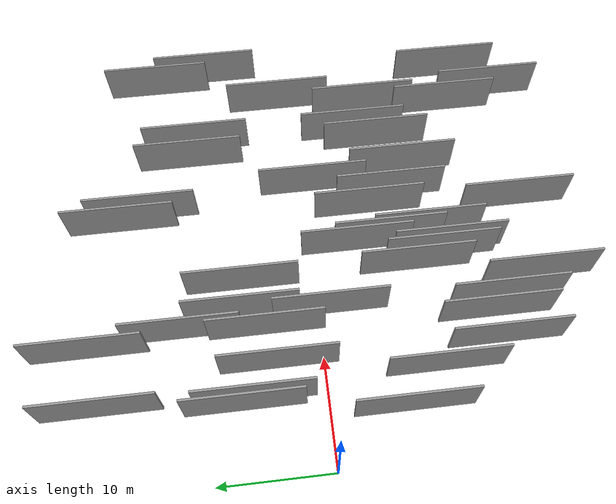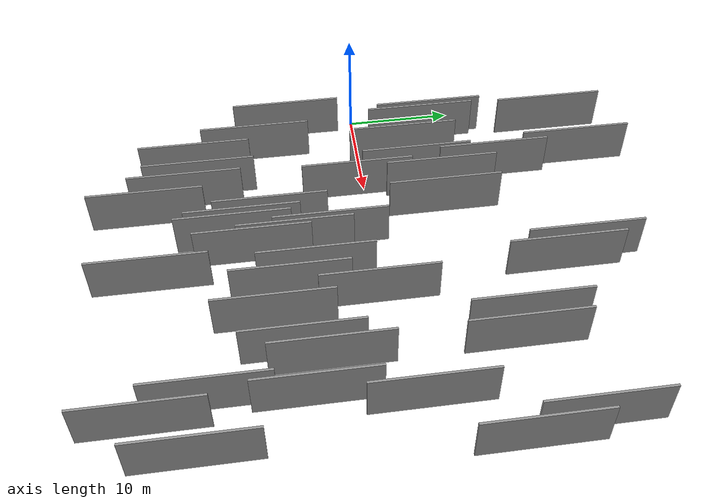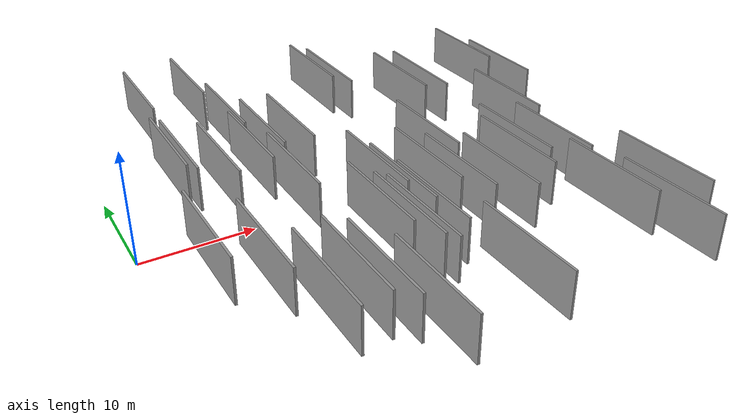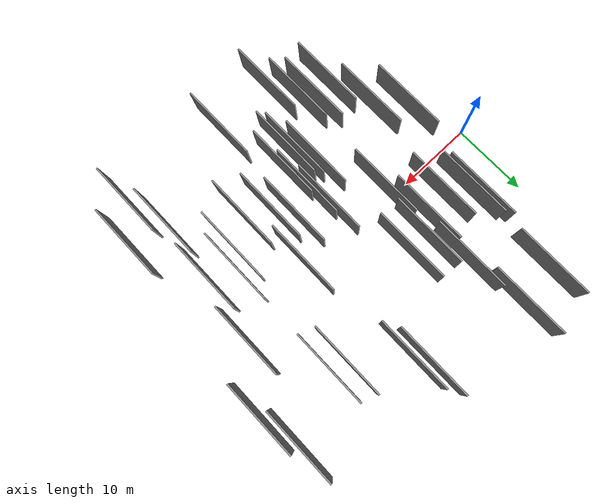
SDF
<sdf version="1.6">
 <world name="default">
  <scene>
   <sky><clouds><speed>12</speed></clouds></sky>
   <ambient>0.4 0.4 0.4 1</ambient>
   <background>0.7 0.7 0.7 1</background>
   <shadows>1</shadows>
  </scene>
  <gravity>0 0 -9.8066</gravity>
  <magnetic_field>6e-06 2.3e-05 -4.2e-05</magnetic_field>
  <physics default="0" name="default_physics" type="ode">
   <ode>
    <solver>
     <type>quick</type>
     <iters>10</iters>
     <sor>1.0</sor>
     <use_dynamic_moi_rescaling>0</use_dynamic_moi_rescaling>
    </solver>
    <constraints>
     <cfm>0</cfm>
     <erp>0.2</erp>
     <contact_max_correcting_vel>100</contact_max_correcting_vel>
     <contact_surface_layer>0.001</contact_surface_layer>
    </constraints>
   </ode>
   <max_step_size>0.004</max_step_size>
   <real_time_factor>1</real_time_factor>
   <real_time_update_rate>250</real_time_update_rate>
  </physics>
  <light name="sun" type="directional">
   <pose>0 0 10 0 0 0</pose>
   <diffuse>0.8 0.8 0.8 1</diffuse>
   <specular>0.2 0.2 0.2 1</specular>
   <attenuation>
    <range>1000</range>
    <constant>0.9</constant>
    <linear>0.01</linear>
    <quadratic>0.001</quadratic>
   </attenuation>
   <direction>-0.5 0.1 -0.9</direction>
  </light>
  <model name="grey_wall_1">
   <static>1</static>
   <pose>23.1692 -5.7111 2.5 0.000000 0.000000 1.570796</pose>
   <link name="link">
    <pose>0 0 2.00 0 0 0</pose>
    <collision name="collision"><geometry><box><size>10.00 0.2 4.00</size></box></geometry></collision>
    <visual name="visual">
     <cast_shadows>0</cast_shadows>
     <geometry><box><size>10.00 0.2 4.00</size></box></geometry>
     <material>
      <script>
       <uri>model://grey_wall/materials/scripts</uri>
       <uri>model://grey_wall/materials/textures</uri>
       <name>vrc/grey_wall</name>
      </script>
     </material>
    </visual>
   </link>
  </model>
  <model name="grey_wall_2">
   <static>1</static>
   <pose>8.8089 -15.5152 2.5 0.000000 0.000000 1.570796</pose>
   <link name="link">
    <pose>0 0 2.00 0 0 0</pose>
    <collision name="collision"><geometry><box><size>10.00 0.2 4.00</size></box></geometry></collision>
    <visual name="visual">
     <cast_shadows>0</cast_shadows>
     <geometry><box><size>10.00 0.2 4.00</size></box></geometry>
     <material>
      <script>
       <uri>model://grey_wall/materials/scripts</uri>
       <uri>model://grey_wall/materials/textures</uri>
       <name>vrc/grey_wall</name>
      </script>
     </material>
    </visual>
   </link>
  </model>
  <model name="grey_wall_3">
   <static>1</static>
   <pose>23.7531 17.0360 2.5 0.000000 0.000000 1.570796</pose>
   <link name="link">
    <pose>0 0 2.00 0 0 0</pose>
    <collision name="collision"><geometry><box><size>10.00 0.2 4.00</size></box></geometry></collision>
    <visual name="visual">
     <cast_shadows>0</cast_shadows>
     <geometry><box><size>10.00 0.2 4.00</size></box></geometry>
     <material>
      <script>
       <uri>model://grey_wall/materials/scripts</uri>
       <uri>model://grey_wall/materials/textures</uri>
       <name>vrc/grey_wall</name>
      </script>
     </material>
    </visual>
   </link>
  </model>
  <model name="grey_wall_4">
   <static>1</static>
   <pose>12.7245 -16.4212 2.5 0.000000 0.000000 1.570796</pose>
   <link name="link">
    <pose>0 0 2.00 0 0 0</pose>
    <collision name="collision"><geometry><box><size>10.00 0.2 4.00</size></box></geometry></collision>
    <visual name="visual">
     <cast_shadows>0</cast_shadows>
     <geometry><box><size>10.00 0.2 4.00</size></box></geometry>
     <material>
      <script>
       <uri>model://grey_wall/materials/scripts</uri>
       <uri>model://grey_wall/materials/textures</uri>
       <name>vrc/grey_wall</name>
      </script>
     </material>
    </visual>
   </link>
  </model>
  <model name="grey_wall_5">
   <static>1</static>
   <pose>24.8041 -7.9614 2.5 0.000000 0.000000 1.570796</pose>
   <link name="link">
    <pose>0 0 2.00 0 0 0</pose>
    <collision name="collision"><geometry><box><size>10.00 0.2 4.00</size></box></geometry></collision>
    <visual name="visual">
     <cast_shadows>0</cast_shadows>
     <geometry><box><size>10.00 0.2 4.00</size></box></geometry>
     <material>
      <script>
       <uri>model://grey_wall/materials/scripts</uri>
       <uri>model://grey_wall/materials/textures</uri>
       <name>vrc/grey_wall</name>
      </script>
     </material>
    </visual>
   </link>
  </model>
  <model name="grey_wall_6">
   <static>1</static>
   <pose>36.3233 -19.7050 2.5 0.000000 0.000000 1.570796</pose>
   <link name="link">
    <pose>0 0 2.00 0 0 0</pose>
    <collision name="collision"><geometry><box><size>10.00 0.2 4.00</size></box></geometry></collision>
    <visual name="visual">
     <cast_shadows>0</cast_shadows>
     <geometry><box><size>10.00 0.2 4.00</size></box></geometry>
     <material>
      <script>
       <uri>model://grey_wall/materials/scripts</uri>
       <uri>model://grey_wall/materials/textures</uri>
       <name>vrc/grey_wall</name>
      </script>
     </material>
    </visual>
   </link>
  </model>
  <model name="grey_wall_7">
   <static>1</static>
   <pose>13.7988 6.6085 2.5 0.000000 0.000000 1.570796</pose>
   <link name="link">
    <pose>0 0 2.00 0 0 0</pose>
    <collision name="collision"><geometry><box><size>10.00 0.2 4.00</size></box></geometry></collision>
    <visual name="visual">
     <cast_shadows>0</cast_shadows>
     <geometry><box><size>10.00 0.2 4.00</size></box></geometry>
     <material>
      <script>
       <uri>model://grey_wall/materials/scripts</uri>
       <uri>model://grey_wall/materials/textures</uri>
       <name>vrc/grey_wall</name>
      </script>
     </material>
    </visual>
   </link>
  </model>
  <model name="grey_wall_8">
   <static>1</static>
   <pose>11.4305 19.7447 2.5 0.000000 0.000000 1.570796</pose>
   <link name="link">
    <pose>0 0 2.00 0 0 0</pose>
    <collision name="collision"><geometry><box><size>10.00 0.2 4.00</size></box></geometry></collision>
    <visual name="visual">
     <cast_shadows>0</cast_shadows>
     <geometry><box><size>10.00 0.2 4.00</size></box></geometry>
     <material>
      <script>
       <uri>model://grey_wall/materials/scripts</uri>
       <uri>model://grey_wall/materials/textures</uri>
       <name>vrc/grey_wall</name>
      </script>
     </material>
    </visual>
   </link>
  </model>
  <model name="grey_wall_9">
   <static>1</static>
   <pose>35.5158 -6.8613 2.5 0.000000 0.000000 1.570796</pose>
   <link name="link">
    <pose>0 0 2.00 0 0 0</pose>
    <collision name="collision"><geometry><box><size>10.00 0.2 4.00</size></box></geometry></collision>
    <visual name="visual">
     <cast_shadows>0</cast_shadows>
     <geometry><box><size>10.00 0.2 4.00</size></box></geometry>
     <material>
      <script>
       <uri>model://grey_wall/materials/scripts</uri>
       <uri>model://grey_wall/materials/textures</uri>
       <name>vrc/grey_wall</name>
      </script>
     </material>
    </visual>
   </link>
  </model>
  <model name="grey_wall_10">
   <static>1</static>
   <pose>26.2723 -0.8661 2.5 0.000000 0.000000 1.570796</pose>
   <link name="link">
    <pose>0 0 2.00 0 0 0</pose>
    <collision name="collision"><geometry><box><size>10.00 0.2 4.00</size></box></geometry></collision>
    <visual name="visual">
     <cast_shadows>0</cast_shadows>
     <geometry><box><size>10.00 0.2 4.00</size></box></geometry>
     <material>
      <script>
       <uri>model://grey_wall/materials/scripts</uri>
       <uri>model://grey_wall/materials/textures</uri>
       <name>vrc/grey_wall</name>
      </script>
     </material>
    </visual>
   </link>
  </model>
  <model name="grey_wall_11">
   <static>1</static>
   <pose>12.3211 11.7401 2.5 0.000000 0.000000 1.570796</pose>
   <link name="link">
    <pose>0 0 2.00 0 0 0</pose>
    <collision name="collision"><geometry><box><size>10.00 0.2 4.00</size></box></geometry></collision>
    <visual name="visual">
     <cast_shadows>0</cast_shadows>
     <geometry><box><size>10.00 0.2 4.00</size></box></geometry>
     <material>
      <script>
       <uri>model://grey_wall/materials/scripts</uri>
       <uri>model://grey_wall/materials/textures</uri>
       <name>vrc/grey_wall</name>
      </script>
     </material>
    </visual>
   </link>
  </model>
  <model name="grey_wall_12">
   <static>1</static>
   <pose>30.4432 10.5828 2.5 0.000000 0.000000 1.570796</pose>
   <link name="link">
    <pose>0 0 2.00 0 0 0</pose>
    <collision name="collision"><geometry><box><size>10.00 0.2 4.00</size></box></geometry></collision>
    <visual name="visual">
     <cast_shadows>0</cast_shadows>
     <geometry><box><size>10.00 0.2 4.00</size></box></geometry>
     <material>
      <script>
       <uri>model://grey_wall/materials/scripts</uri>
       <uri>model://grey_wall/materials/textures</uri>
       <name>vrc/grey_wall</name>
      </script>
     </material>
    </visual>
   </link>
  </model>
  <model name="grey_wall_13">
   <static>1</static>
   <pose>34.8118 -14.9134 2.5 0.000000 0.000000 1.570796</pose>
   <link name="link">
    <pose>0 0 2.00 0 0 0</pose>
    <collision name="collision"><geometry><box><size>10.00 0.2 4.00</size></box></geometry></collision>
    <visual name="visual">
     <cast_shadows>0</cast_shadows>
     <geometry><box><size>10.00 0.2 4.00</size></box></geometry>
     <material>
      <script>
       <uri>model://grey_wall/materials/scripts</uri>
       <uri>model://grey_wall/materials/textures</uri>
       <name>vrc/grey_wall</name>
      </script>
     </material>
    </visual>
   </link>
  </model>
  <model name="grey_wall_14">
   <static>1</static>
   <pose>32.4131 9.8913 2.5 0.000000 0.000000 1.570796</pose>
   <link name="link">
    <pose>0 0 2.00 0 0 0</pose>
    <collision name="collision"><geometry><box><size>10.00 0.2 4.00</size></box></geometry></collision>
    <visual name="visual">
     <cast_shadows>0</cast_shadows>
     <geometry><box><size>10.00 0.2 4.00</size></box></geometry>
     <material>
      <script>
       <uri>model://grey_wall/materials/scripts</uri>
       <uri>model://grey_wall/materials/textures</uri>
       <name>vrc/grey_wall</name>
      </script>
     </material>
    </visual>
   </link>
  </model>
  <model name="grey_wall_15">
   <static>1</static>
   <pose>18.3976 -12.3754 2.5 0.000000 0.000000 1.570796</pose>
   <link name="link">
    <pose>0 0 2.00 0 0 0</pose>
    <collision name="collision"><geometry><box><size>10.00 0.2 4.00</size></box></geometry></collision>
    <visual name="visual">
     <cast_shadows>0</cast_shadows>
     <geometry><box><size>10.00 0.2 4.00</size></box></geometry>
     <material>
      <script>
       <uri>model://grey_wall/materials/scripts</uri>
       <uri>model://grey_wall/materials/textures</uri>
       <name>vrc/grey_wall</name>
      </script>
     </material>
    </visual>
   </link>
  </model>
  <model name="grey_wall_16">
   <static>1</static>
   <pose>27.6987 -9.5060 2.5 0.000000 0.000000 1.570796</pose>
   <link name="link">
    <pose>0 0 2.00 0 0 0</pose>
    <collision name="collision"><geometry><box><size>10.00 0.2 4.00</size></box></geometry></collision>
    <visual name="visual">
     <cast_shadows>0</cast_shadows>
     <geometry><box><size>10.00 0.2 4.00</size></box></geometry>
     <material>
      <script>
       <uri>model://grey_wall/materials/scripts</uri>
       <uri>model://grey_wall/materials/textures</uri>
       <name>vrc/grey_wall</name>
      </script>
     </material>
    </visual>
   </link>
  </model>
  <model name="grey_wall_17">
   <static>1</static>
   <pose>19.8444 -7.1583 2.5 0.000000 0.000000 1.570796</pose>
   <link name="link">
    <pose>0 0 2.00 0 0 0</pose>
    <collision name="collision"><geometry><box><size>10.00 0.2 4.00</size></box></geometry></collision>
    <visual name="visual">
     <cast_shadows>0</cast_shadows>
     <geometry><box><size>10.00 0.2 4.00</size></box></geometry>
     <material>
      <script>
       <uri>model://grey_wall/materials/scripts</uri>
       <uri>model://grey_wall/materials/textures</uri>
       <name>vrc/grey_wall</name>
      </script>
     </material>
    </visual>
   </link>
  </model>
  <model name="grey_wall_18">
   <static>1</static>
   <pose>14.6162 -19.8121 2.5 0.000000 0.000000 1.570796</pose>
   <link name="link">
    <pose>0 0 2.00 0 0 0</pose>
    <collision name="collision"><geometry><box><size>10.00 0.2 4.00</size></box></geometry></collision>
    <visual name="visual">
     <cast_shadows>0</cast_shadows>
     <geometry><box><size>10.00 0.2 4.00</size></box></geometry>
     <material>
      <script>
       <uri>model://grey_wall/materials/scripts</uri>
       <uri>model://grey_wall/materials/textures</uri>
       <name>vrc/grey_wall</name>
      </script>
     </material>
    </visual>
   </link>
  </model>
  <model name="grey_wall_19">
   <static>1</static>
   <pose>16.4527 6.4437 2.5 0.000000 0.000000 1.570796</pose>
   <link name="link">
    <pose>0 0 2.00 0 0 0</pose>
    <collision name="collision"><geometry><box><size>10.00 0.2 4.00</size></box></geometry></collision>
    <visual name="visual">
     <cast_shadows>0</cast_shadows>
     <geometry><box><size>10.00 0.2 4.00</size></box></geometry>
     <material>
      <script>
       <uri>model://grey_wall/materials/scripts</uri>
       <uri>model://grey_wall/materials/textures</uri>
       <name>vrc/grey_wall</name>
      </script>
     </material>
    </visual>
   </link>
  </model>
  <model name="grey_wall_20">
   <static>1</static>
   <pose>24.7977 15.1253 2.5 0.000000 0.000000 1.570796</pose>
   <link name="link">
    <pose>0 0 2.00 0 0 0</pose>
    <collision name="collision"><geometry><box><size>10.00 0.2 4.00</size></box></geometry></collision>
    <visual name="visual">
     <cast_shadows>0</cast_shadows>
     <geometry><box><size>10.00 0.2 4.00</size></box></geometry>
     <material>
      <script>
       <uri>model://grey_wall/materials/scripts</uri>
       <uri>model://grey_wall/materials/textures</uri>
       <name>vrc/grey_wall</name>
      </script>
     </material>
    </visual>
   </link>
  </model>
  <model name="grey_wall_21">
   <static>1</static>
   <pose>6.2727 18.5757 2.5 0.000000 0.000000 1.570796</pose>
   <link name="link">
    <pose>0 0 2.00 0 0 0</pose>
    <collision name="collision"><geometry><box><size>10.00 0.2 4.00</size></box></geometry></collision>
    <visual name="visual">
     <cast_shadows>0</cast_shadows>
     <geometry><box><size>10.00 0.2 4.00</size></box></geometry>
     <material>
      <script>
       <uri>model://grey_wall/materials/scripts</uri>
       <uri>model://grey_wall/materials/textures</uri>
       <name>vrc/grey_wall</name>
      </script>
     </material>
    </visual>
   </link>
  </model>
  <model name="grey_wall_22">
   <static>1</static>
   <pose>8.7152 3.8779 2.5 0.000000 0.000000 1.570796</pose>
   <link name="link">
    <pose>0 0 2.00 0 0 0</pose>
    <collision name="collision"><geometry><box><size>10.00 0.2 4.00</size></box></geometry></collision>
    <visual name="visual">
     <cast_shadows>0</cast_shadows>
     <geometry><box><size>10.00 0.2 4.00</size></box></geometry>
     <material>
      <script>
       <uri>model://grey_wall/materials/scripts</uri>
       <uri>model://grey_wall/materials/textures</uri>
       <name>vrc/grey_wall</name>
      </script>
     </material>
    </visual>
   </link>
  </model>
  <model name="grey_wall_23">
   <static>1</static>
   <pose>19.2820 -4.0748 2.5 0.000000 0.000000 1.570796</pose>
   <link name="link">
    <pose>0 0 2.00 0 0 0</pose>
    <collision name="collision"><geometry><box><size>10.00 0.2 4.00</size></box></geometry></collision>
    <visual name="visual">
     <cast_shadows>0</cast_shadows>
     <geometry><box><size>10.00 0.2 4.00</size></box></geometry>
     <material>
      <script>
       <uri>model://grey_wall/materials/scripts</uri>
       <uri>model://grey_wall/materials/textures</uri>
       <name>vrc/grey_wall</name>
      </script>
     </material>
    </visual>
   </link>
  </model>
  <model name="grey_wall_24">
   <static>1</static>
   <pose>36.8950 1.5332 2.5 0.000000 0.000000 1.570796</pose>
   <link name="link">
    <pose>0 0 2.00 0 0 0</pose>
    <collision name="collision"><geometry><box><size>10.00 0.2 4.00</size></box></geometry></collision>
    <visual name="visual">
     <cast_shadows>0</cast_shadows>
     <geometry><box><size>10.00 0.2 4.00</size></box></geometry>
     <material>
      <script>
       <uri>model://grey_wall/materials/scripts</uri>
       <uri>model://grey_wall/materials/textures</uri>
       <name>vrc/grey_wall</name>
      </script>
     </material>
    </visual>
   </link>
  </model>
  <model name="grey_wall_25">
   <static>1</static>
   <pose>22.4961 -19.4308 2.5 0.000000 0.000000 1.570796</pose>
   <link name="link">
    <pose>0 0 2.00 0 0 0</pose>
    <collision name="collision"><geometry><box><size>10.00 0.2 4.00</size></box></geometry></collision>
    <visual name="visual">
     <cast_shadows>0</cast_shadows>
     <geometry><box><size>10.00 0.2 4.00</size></box></geometry>
     <material>
      <script>
       <uri>model://grey_wall/materials/scripts</uri>
       <uri>model://grey_wall/materials/textures</uri>
       <name>vrc/grey_wall</name>
      </script>
     </material>
    </visual>
   </link>
  </model>
  <model name="grey_wall_26">
   <static>1</static>
   <pose>16.6846 -9.0794 2.5 0.000000 0.000000 1.570796</pose>
   <link name="link">
    <pose>0 0 2.00 0 0 0</pose>
    <collision name="collision"><geometry><box><size>10.00 0.2 4.00</size></box></geometry></collision>
    <visual name="visual">
     <cast_shadows>0</cast_shadows>
     <geometry><box><size>10.00 0.2 4.00</size></box></geometry>
     <material>
      <script>
       <uri>model://grey_wall/materials/scripts</uri>
       <uri>model://grey_wall/materials/textures</uri>
       <name>vrc/grey_wall</name>
      </script>
     </material>
    </visual>
   </link>
  </model>
  <model name="grey_wall_27">
   <static>1</static>
   <pose>20.2823 -10.8004 2.5 0.000000 0.000000 1.570796</pose>
   <link name="link">
    <pose>0 0 2.00 0 0 0</pose>
    <collision name="collision"><geometry><box><size>10.00 0.2 4.00</size></box></geometry></collision>
    <visual name="visual">
     <cast_shadows>0</cast_shadows>
     <geometry><box><size>10.00 0.2 4.00</size></box></geometry>
     <material>
      <script>
       <uri>model://grey_wall/materials/scripts</uri>
       <uri>model://grey_wall/materials/textures</uri>
       <name>vrc/grey_wall</name>
      </script>
     </material>
    </visual>
   </link>
  </model>
  <model name="grey_wall_28">
   <static>1</static>
   <pose>32.3877 -5.4200 2.5 0.000000 0.000000 1.570796</pose>
   <link name="link">
    <pose>0 0 2.00 0 0 0</pose>
    <collision name="collision"><geometry><box><size>10.00 0.2 4.00</size></box></geometry></collision>
    <visual name="visual">
     <cast_shadows>0</cast_shadows>
     <geometry><box><size>10.00 0.2 4.00</size></box></geometry>
     <material>
      <script>
       <uri>model://grey_wall/materials/scripts</uri>
       <uri>model://grey_wall/materials/textures</uri>
       <name>vrc/grey_wall</name>
      </script>
     </material>
    </visual>
   </link>
  </model>
  <model name="grey_wall_29">
   <static>1</static>
   <pose>11.2845 -15.1771 2.5 0.000000 0.000000 1.570796</pose>
   <link name="link">
    <pose>0 0 2.00 0 0 0</pose>
    <collision name="collision"><geometry><box><size>10.00 0.2 4.00</size></box></geometry></collision>
    <visual name="visual">
     <cast_shadows>0</cast_shadows>
     <geometry><box><size>10.00 0.2 4.00</size></box></geometry>
     <material>
      <script>
       <uri>model://grey_wall/materials/scripts</uri>
       <uri>model://grey_wall/materials/textures</uri>
       <name>vrc/grey_wall</name>
      </script>
     </material>
    </visual>
   </link>
  </model>
  <model name="grey_wall_30">
   <static>1</static>
   <pose>31.0245 -7.5171 2.5 0.000000 0.000000 1.570796</pose>
   <link name="link">
    <pose>0 0 2.00 0 0 0</pose>
    <collision name="collision"><geometry><box><size>10.00 0.2 4.00</size></box></geometry></collision>
    <visual name="visual">
     <cast_shadows>0</cast_shadows>
     <geometry><box><size>10.00 0.2 4.00</size></box></geometry>
     <material>
      <script>
       <uri>model://grey_wall/materials/scripts</uri>
       <uri>model://grey_wall/materials/textures</uri>
       <name>vrc/grey_wall</name>
      </script>
     </material>
    </visual>
   </link>
  </model>
  <model name="grey_wall_31">
   <static>1</static>
   <pose>6.0219 5.9983 2.5 0.000000 0.000000 1.570796</pose>
   <link name="link">
    <pose>0 0 2.00 0 0 0</pose>
    <collision name="collision"><geometry><box><size>10.00 0.2 4.00</size></box></geometry></collision>
    <visual name="visual">
     <cast_shadows>0</cast_shadows>
     <geometry><box><size>10.00 0.2 4.00</size></box></geometry>
     <material>
      <script>
       <uri>model://grey_wall/materials/scripts</uri>
       <uri>model://grey_wall/materials/textures</uri>
       <name>vrc/grey_wall</name>
      </script>
     </material>
    </visual>
   </link>
  </model>
  <model name="grey_wall_32">
   <static>1</static>
   <pose>39.5026 -15.9468 2.5 0.000000 0.000000 1.570796</pose>
   <link name="link">
    <pose>0 0 2.00 0 0 0</pose>
    <collision name="collision"><geometry><box><size>10.00 0.2 4.00</size></box></geometry></collision>
    <visual name="visual">
     <cast_shadows>0</cast_shadows>
     <geometry><box><size>10.00 0.2 4.00</size></box></geometry>
     <material>
      <script>
       <uri>model://grey_wall/materials/scripts</uri>
       <uri>model://grey_wall/materials/textures</uri>
       <name>vrc/grey_wall</name>
      </script>
     </material>
    </visual>
   </link>
  </model>
  <model name="grey_wall_33">
   <static>1</static>
   <pose>17.7215 -11.5348 2.5 0.000000 0.000000 1.570796</pose>
   <link name="link">
    <pose>0 0 2.00 0 0 0</pose>
    <collision name="collision"><geometry><box><size>10.00 0.2 4.00</size></box></geometry></collision>
    <visual name="visual">
     <cast_shadows>0</cast_shadows>
     <geometry><box><size>10.00 0.2 4.00</size></box></geometry>
     <material>
      <script>
       <uri>model://grey_wall/materials/scripts</uri>
       <uri>model://grey_wall/materials/textures</uri>
       <name>vrc/grey_wall</name>
      </script>
     </material>
    </visual>
   </link>
  </model>
  <model name="grey_wall_34">
   <static>1</static>
   <pose>6.9218 -9.8953 2.5 0.000000 0.000000 1.570796</pose>
   <link name="link">
    <pose>0 0 2.00 0 0 0</pose>
    <collision name="collision"><geometry><box><size>10.00 0.2 4.00</size></box></geometry></collision>
    <visual name="visual">
     <cast_shadows>0</cast_shadows>
     <geometry><box><size>10.00 0.2 4.00</size></box></geometry>
     <material>
      <script>
       <uri>model://grey_wall/materials/scripts</uri>
       <uri>model://grey_wall/materials/textures</uri>
       <name>vrc/grey_wall</name>
      </script>
     </material>
    </visual>
   </link>
  </model>
  <model name="grey_wall_35">
   <static>1</static>
   <pose>11.9021 4.6422 2.5 0.000000 0.000000 1.570796</pose>
   <link name="link">
    <pose>0 0 2.00 0 0 0</pose>
    <collision name="collision"><geometry><box><size>10.00 0.2 4.00</size></box></geometry></collision>
    <visual name="visual">
     <cast_shadows>0</cast_shadows>
     <geometry><box><size>10.00 0.2 4.00</size></box></geometry>
     <material>
      <script>
       <uri>model://grey_wall/materials/scripts</uri>
       <uri>model://grey_wall/materials/textures</uri>
       <name>vrc/grey_wall</name>
      </script>
     </material>
    </visual>
   </link>
  </model>
  <model name="grey_wall_36">
   <static>1</static>
   <pose>41.3495 8.6565 2.5 0.000000 0.000000 1.570796</pose>
   <link name="link">
    <pose>0 0 2.00 0 0 0</pose>
    <collision name="collision"><geometry><box><size>10.00 0.2 4.00</size></box></geometry></collision>
    <visual name="visual">
     <cast_shadows>0</cast_shadows>
     <geometry><box><size>10.00 0.2 4.00</size></box></geometry>
     <material>
      <script>
       <uri>model://grey_wall/materials/scripts</uri>
       <uri>model://grey_wall/materials/textures</uri>
       <name>vrc/grey_wall</name>
      </script>
     </material>
    </visual>
   </link>
  </model>
  <model name="grey_wall_37">
   <static>1</static>
   <pose>40.2045 13.5300 2.5 0.000000 0.000000 1.570796</pose>
   <link name="link">
    <pose>0 0 2.00 0 0 0</pose>
    <collision name="collision"><geometry><box><size>10.00 0.2 4.00</size></box></geometry></collision>
    <visual name="visual">
     <cast_shadows>0</cast_shadows>
     <geometry><box><size>10.00 0.2 4.00</size></box></geometry>
     <material>
      <script>
       <uri>model://grey_wall/materials/scripts</uri>
       <uri>model://grey_wall/materials/textures</uri>
       <name>vrc/grey_wall</name>
      </script>
     </material>
    </visual>
   </link>
  </model>
  <model name="grey_wall_38">
   <static>1</static>
   <pose>3.8414 -6.7503 2.5 0.000000 0.000000 1.570796</pose>
   <link name="link">
    <pose>0 0 2.00 0 0 0</pose>
    <collision name="collision"><geometry><box><size>10.00 0.2 4.00</size></box></geometry></collision>
    <visual name="visual">
     <cast_shadows>0</cast_shadows>
     <geometry><box><size>10.00 0.2 4.00</size></box></geometry>
     <material>
      <script>
       <uri>model://grey_wall/materials/scripts</uri>
       <uri>model://grey_wall/materials/textures</uri>
       <name>vrc/grey_wall</name>
      </script>
     </material>
    </visual>
   </link>
  </model>
  <model name="grey_wall_39">
   <static>1</static>
   <pose>5.4189 6.9058 2.5 0.000000 0.000000 1.570796</pose>
   <link name="link">
    <pose>0 0 2.00 0 0 0</pose>
    <collision name="collision"><geometry><box><size>10.00 0.2 4.00</size></box></geometry></collision>
    <visual name="visual">
     <cast_shadows>0</cast_shadows>
     <geometry><box><size>10.00 0.2 4.00</size></box></geometry>
     <material>
      <script>
       <uri>model://grey_wall/materials/scripts</uri>
       <uri>model://grey_wall/materials/textures</uri>
       <name>vrc/grey_wall</name>
      </script>
     </material>
    </visual>
   </link>
  </model>
  <model name="grey_wall_40">
   <static>1</static>
   <pose>13.2375 -1.0026 2.5 0.000000 0.000000 1.570796</pose>
   <link name="link">
    <pose>0 0 2.00 0 0 0</pose>
    <collision name="collision"><geometry><box><size>10.00 0.2 4.00</size></box></geometry></collision>
    <visual name="visual">
     <cast_shadows>0</cast_shadows>
     <geometry><box><size>10.00 0.2 4.00</size></box></geometry>
     <material>
      <script>
       <uri>model://grey_wall/materials/scripts</uri>
       <uri>model://grey_wall/materials/textures</uri>
       <name>vrc/grey_wall</name>
      </script>
     </material>
    </visual>
   </link>
  </model>
 </world>
</sdf>
